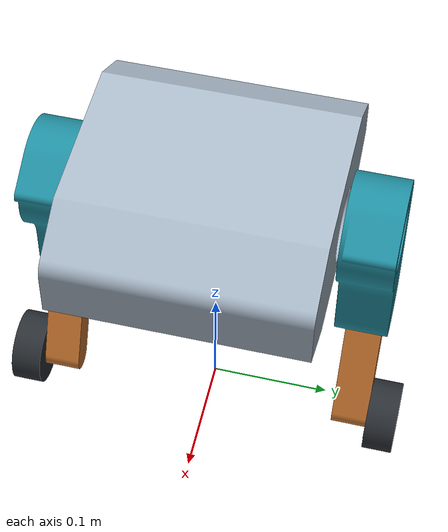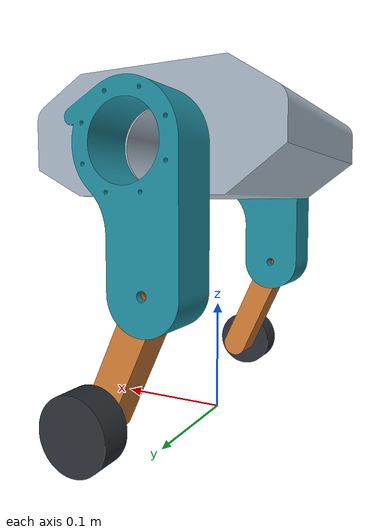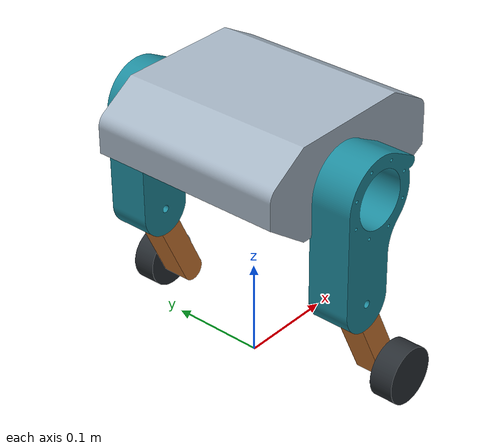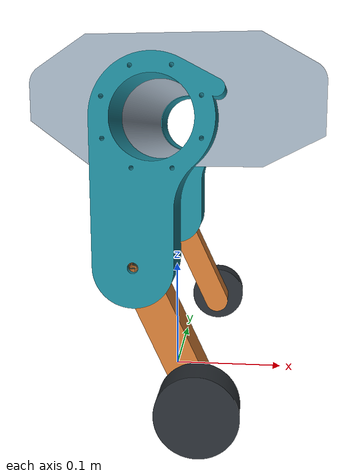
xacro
<?xml version="1.0"?>
<robot name="cad_wheel_leg" xmlns:xacro="http://www.ros.org/wiki/xacro">
  <!-- CAD pose is joint zero. Inertials are estimates; see PHYSICS.md. -->
  <xacro:arg name="simulation" default="false"/>
  <xacro:arg name="jump_model" default="false"/>
  <xacro:arg name="jump_leg_speed" default="12.566370614359172"/>
  <xacro:arg name="jump_leg_velocity_damping" default="0.0"/>
  <xacro:arg name="measure_contacts" default="false"/>
  <xacro:property name="jump_leg_speed" value="${float('$(arg jump_leg_speed)')}"/>
  <xacro:property name="jump_model" value="${'$(arg jump_model)' == 'true' and '$(arg simulation)' == 'true'}"/>
  <xacro:property name="measure_contacts" value="${'$(arg measure_contacts)' == 'true' and '$(arg simulation)' == 'true'}"/>
  <xacro:property name="simulation" value="${'$(arg simulation)' == 'true'}"/>
  <xacro:property name="mesh_root" value="package://tap_robot_description/description/cad_robot/meshes"/>
  <xacro:property name="masses" value="${xacro.load_yaml('masses.yaml')}"/>
  <xacro:property name="mesh_inertials" value="${xacro.load_yaml('mesh_inertials.yaml')}"/>
  <material name="cad_body"><color rgba="0.65 0.71 0.77 1"/></material>
  <material name="cad_thigh"><color rgba="0.12 0.55 0.62 1"/></material>
  <material name="cad_shin"><color rgba="0.82 0.48 0.20 1"/></material>
  <material name="cad_tire"><color rgba="0.16 0.18 0.20 1"/></material>

  <xacro:macro name="mesh_link" params="name mesh material mass_key mesh_pitch:=0">
    <xacro:property name="mass" value="${masses[mass_key]}"/>
    <xacro:property name="properties" value="${mesh_inertials[mesh]}"/>
    <xacro:property name="com" value="${properties['center_of_mass']}"/>
    <xacro:property name="tensor" value="${properties['inertia_per_kg']}"/>
    <link name="${name}">
      <visual>
        <origin rpy="0 ${mesh_pitch} 0"/>
        <geometry><mesh filename="${mesh_root}/${mesh}.stl"/></geometry>
        <material name="${material}"/>
      </visual>
      <xacro:if value="${simulation}">
        <!-- Primitive envelopes avoid unstable concave triangle contact. -->
        <collision name="${name}_collision">
          <xacro:if value="${mass_key == 'wheel'}">
            <origin rpy="${pi / 2} 0 0"/>
            <geometry><cylinder radius="0.03" length="0.025"/></geometry>
          </xacro:if>
          <xacro:if value="${mass_key == 'body'}">
            <origin xyz="${cos(mesh_pitch) * 0.01321673 - sin(mesh_pitch) * 0.011} -0.0025 ${-sin(mesh_pitch) * 0.01321673 - cos(mesh_pitch) * 0.011}" rpy="0 ${mesh_pitch} 0"/>
            <geometry><box size="0.09757 0.205 0.222"/></geometry>
          </xacro:if>
          <xacro:if value="${mass_key == 'thigh'}">
            <origin xyz="-0.007054675 0 -0.05238371" rpy="0 0.133864 0"/>
            <geometry><box size="0.035 0.044 0.106"/></geometry>
          </xacro:if>
          <xacro:if value="${mass_key == 'shin'}">
            <origin xyz="0.02331538 0 -0.05" rpy="0 -0.436333 0"/>
            <geometry><box size="0.03 0.03 0.11034"/></geometry>
          </xacro:if>
        </collision>
      </xacro:if>
      <inertial>
        <!-- Rotate COM and tensor frame with the mesh, leaving joint frames unchanged. -->
        <origin xyz="${cos(mesh_pitch) * com[0] + sin(mesh_pitch) * com[2]} ${com[1]} ${-sin(mesh_pitch) * com[0] + cos(mesh_pitch) * com[2]}" rpy="0 ${mesh_pitch} 0"/>
        <mass value="${mass}"/>
        <inertia ixx="${mass * tensor['ixx']}" ixy="${mass * tensor['ixy']}"
                 ixz="${mass * tensor['ixz']}" iyy="${mass * tensor['iyy']}"
                 iyz="${mass * tensor['iyz']}" izz="${mass * tensor['izz']}"/>
      </inertial>
    </link>
  </xacro:macro>

  <xacro:unless value="${simulation}">
  <link name="cad_ground"/>
  <joint name="cad_display_mount" type="fixed">
    <parent link="cad_ground"/><child link="cad_body"/>
    <origin xyz="0 0 0.23476742"/>
  </joint>
  </xacro:unless>
  <xacro:mesh_link name="cad_body" mesh="body" material="cad_body" mass_key="body" mesh_pitch="${-pi / 2}"/>

  <xacro:macro name="leg" params="side sign">
    <xacro:mesh_link name="cad_${side}_thigh" mesh="${side}_thigh" material="cad_thigh" mass_key="thigh"/>
    <joint name="cad_${side}_hip" type="revolute">
      <parent link="cad_body"/><child link="cad_${side}_thigh"/>
      <origin xyz="0 ${sign * 0.125} 0"/>
      <axis xyz="0 1 0"/>
      <!-- Jump velocity is a numerical solver guard, NOT the motor cutoff. -->
      <limit lower="-1.57" upper="1.57" effort="${5 if jump_model else (12 if simulation else 1)}" velocity="${1000 if jump_model else (15 if simulation else 1)}"/>
      <xacro:if value="${simulation}"><dynamics damping="${0.02 if jump_model else 1.0}" friction="0.0"/></xacro:if>
    </joint>

    <xacro:mesh_link name="cad_${side}_shin" mesh="${side}_shin" material="cad_shin" mass_key="shin"/>
    <joint name="cad_${side}_knee" type="revolute">
      <parent link="cad_${side}_thigh"/><child link="cad_${side}_shin"/>
      <origin xyz="-0.01410935 ${sign * 0.002} -0.10476742"/>
      <axis xyz="0 1 0"/>
      <limit lower="-2.1" upper="2.1" effort="${5 if jump_model else (12 if simulation else 1)}" velocity="${1000 if jump_model else (15 if simulation else 1)}"/>
      <xacro:if value="${simulation}"><dynamics damping="${0.02 if jump_model else 1.0}" friction="0.0"/></xacro:if>
    </joint>

    <xacro:mesh_link name="cad_${side}_wheel_link" mesh="${side}_wheel" material="cad_tire" mass_key="wheel"/>
    <joint name="cad_${side}_wheel" type="continuous">
      <parent link="cad_${side}_shin"/><child link="cad_${side}_wheel_link"/>
      <origin xyz="0.04663076 ${sign * 0.0275} -0.1"/>
      <axis xyz="0 1 0"/>
      <limit effort="${0.13 if jump_model else 1}" velocity="${1000 if jump_model else (80 if simulation else 1)}"/>
      <xacro:if value="${simulation}"><dynamics damping="0.001" friction="0.0"/></xacro:if>
    </joint>
  </xacro:macro>

  <xacro:leg side="left" sign="${1}"/>
  <xacro:leg side="right" sign="${-1}"/>
</robot>
